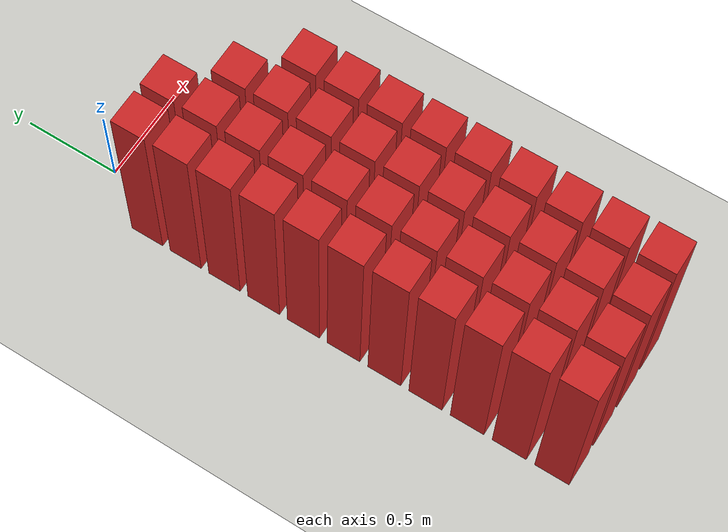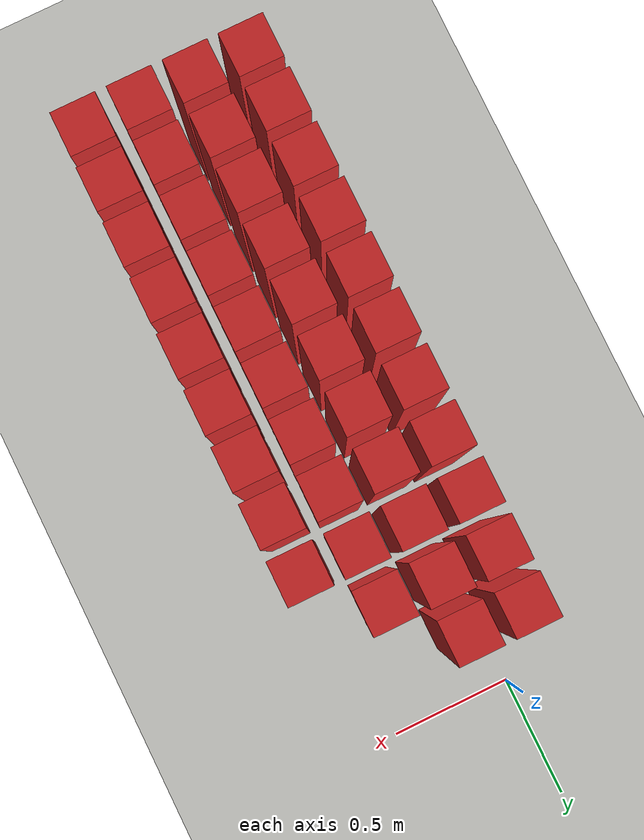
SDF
<sdf version="1.7">
 <world name="default">
  <model name="ground_plane">
   <static>1</static>
   <link name="link">
    <collision name="collision">
     <geometry><plane><normal>0 0 1</normal><size>100 100</size></plane></geometry>
     <surface>
      <contact><collide_bitmask>65535</collide_bitmask></contact>
      <friction><ode><mu>100</mu><mu2>50</mu2></ode></friction>
     </surface>
    </collision>
    <visual name="visual">
     <cast_shadows>0</cast_shadows>
     <geometry><plane><normal>0 0 1</normal><size>100 100</size></plane></geometry>
     <material>
      <script><uri>file://media/materials/scripts/gazebo.material</uri><name>Gazebo/CeilingTiled</name></script>
     </material>
    </visual>
   </link>
  </model>
  <model name="wall11">
   <link name="link">
    <pose>0 0 0.5 0 -0 0</pose>
    <inertial>
     <mass>0.5167</mass>
     <inertia>
      <ixx>0.000861167</ixx>
      <ixy>0</ixy>
      <ixz>0</ixz>
      <iyy>0.000861167</iyy>
      <iyz>0</iyz>
      <izz>0.000861167</izz>
     </inertia>
    </inertial>
    <collision name="collision">
     <geometry><box><size>0.21 0.21 1</size></box></geometry>
     <surface>
      <contact>
       <poissons_ratio>0.347</poissons_ratio>
       <elastic_modulus>8.8e+09</elastic_modulus>
       <ode><kp>100000</kp><kd>100</kd><max_vel>100</max_vel><min_depth>0.001</min_depth></ode>
      </contact>
      <friction>
       <torsional>
        <coefficient>1</coefficient>
        <use_patch_radius>0</use_patch_radius>
        <surface_radius>0.01</surface_radius>
       </torsional>
      </friction>
     </surface>
    </collision>
    <visual name="visual">
     <geometry><box><size>0.175 0.175 1</size></box></geometry>
     <material>
      <script><uri>file://media/materials/scripts/gazebo.material</uri><name>Gazebo/Red</name></script>
     </material>
    </visual>
   </link>
   <pose>-0.108696 -2.5 0 0 -0 0</pose>
  </model>
  <model name="wall12">
   <link name="link">
    <pose>0 0 0.5 0 -0 0</pose>
    <inertial>
     <mass>0.5167</mass>
     <inertia>
      <ixx>0.000861167</ixx>
      <ixy>0</ixy>
      <ixz>0</ixz>
      <iyy>0.000861167</iyy>
      <iyz>0</iyz>
      <izz>0.000861167</izz>
     </inertia>
    </inertial>
    <collision name="collision">
     <geometry><box><size>0.21 0.21 1</size></box></geometry>
     <surface>
      <contact>
       <poissons_ratio>0.347</poissons_ratio>
       <elastic_modulus>8.8e+09</elastic_modulus>
       <ode><kp>100000</kp><kd>100</kd><max_vel>100</max_vel><min_depth>0.001</min_depth></ode>
      </contact>
      <friction>
       <torsional>
        <coefficient>1</coefficient>
        <use_patch_radius>0</use_patch_radius>
        <surface_radius>0.01</surface_radius>
       </torsional>
      </friction>
     </surface>
    </collision>
    <visual name="visual">
     <geometry><box><size>0.175 0.175 1</size></box></geometry>
     <material>
      <script><uri>file://media/materials/scripts/gazebo.material</uri><name>Gazebo/Red</name></script>
     </material>
    </visual>
   </link>
   <pose>0.108696 -2.5 0 0 -0 0</pose>
  </model>
  <model name="wall13">
   <link name="link">
    <pose>0 0 0.5 0 -0 0</pose>
    <inertial>
     <mass>0.5167</mass>
     <inertia>
      <ixx>0.000861167</ixx>
      <ixy>0</ixy>
      <ixz>0</ixz>
      <iyy>0.000861167</iyy>
      <iyz>0</iyz>
      <izz>0.000861167</izz>
     </inertia>
    </inertial>
    <collision name="collision">
     <geometry><box><size>0.21 0.21 1</size></box></geometry>
     <surface>
      <contact>
       <poissons_ratio>0.347</poissons_ratio>
       <elastic_modulus>8.8e+09</elastic_modulus>
       <ode><kp>100000</kp><kd>100</kd><max_vel>100</max_vel><min_depth>0.001</min_depth></ode>
      </contact>
      <friction>
       <torsional>
        <coefficient>1</coefficient>
        <use_patch_radius>0</use_patch_radius>
        <surface_radius>0.01</surface_radius>
       </torsional>
      </friction>
     </surface>
    </collision>
    <visual name="visual">
     <geometry><box><size>0.175 0.175 1</size></box></geometry>
     <material>
      <script><uri>file://media/materials/scripts/gazebo.material</uri><name>Gazebo/Red</name></script>
     </material>
    </visual>
   </link>
   <pose>0.326087 -2.5 0 0 -0 0</pose>
  </model>
  <model name="wall14">
   <link name="link">
    <pose>0 0 0.5 0 -0 0</pose>
    <inertial>
     <mass>0.5167</mass>
     <inertia>
      <ixx>0.000861167</ixx>
      <ixy>0</ixy>
      <ixz>0</ixz>
      <iyy>0.000861167</iyy>
      <iyz>0</iyz>
      <izz>0.000861167</izz>
     </inertia>
    </inertial>
    <collision name="collision">
     <geometry><box><size>0.21 0.21 1</size></box></geometry>
     <surface>
      <contact>
       <poissons_ratio>0.347</poissons_ratio>
       <elastic_modulus>8.8e+09</elastic_modulus>
       <ode><kp>100000</kp><kd>100</kd><max_vel>100</max_vel><min_depth>0.001</min_depth></ode>
      </contact>
      <friction>
       <torsional>
        <coefficient>1</coefficient>
        <use_patch_radius>0</use_patch_radius>
        <surface_radius>0.01</surface_radius>
       </torsional>
      </friction>
     </surface>
    </collision>
    <visual name="visual">
     <geometry><box><size>0.175 0.175 1</size></box></geometry>
     <material>
      <script><uri>file://media/materials/scripts/gazebo.material</uri><name>Gazebo/Red</name></script>
     </material>
    </visual>
   </link>
   <pose>0.543478 -2.5 0 0 -0 0</pose>
  </model>
  <model name="wall34">
   <link name="link">
    <pose>0 0 0.5 0 -0 0</pose>
    <inertial>
     <mass>0.5167</mass>
     <inertia>
      <ixx>0.000861167</ixx>
      <ixy>0</ixy>
      <ixz>0</ixz>
      <iyy>0.000861167</iyy>
      <iyz>0</iyz>
      <izz>0.000861167</izz>
     </inertia>
    </inertial>
    <collision name="collision">
     <geometry><box><size>0.21 0.21 1</size></box></geometry>
     <surface>
      <contact>
       <poissons_ratio>0.347</poissons_ratio>
       <elastic_modulus>8.8e+09</elastic_modulus>
       <ode><kp>100000</kp><kd>100</kd><max_vel>100</max_vel><min_depth>0.001</min_depth></ode>
      </contact>
      <friction>
       <torsional>
        <coefficient>1</coefficient>
        <use_patch_radius>0</use_patch_radius>
        <surface_radius>0.01</surface_radius>
       </torsional>
      </friction>
     </surface>
    </collision>
    <visual name="visual">
     <geometry><box><size>0.175 0.175 1</size></box></geometry>
     <material>
      <script><uri>file://media/materials/scripts/gazebo.material</uri><name>Gazebo/Red</name></script>
     </material>
    </visual>
   </link>
   <pose>-0.108696 -2.28261 0 0 -0 0</pose>
  </model>
  <model name="wall35">
   <link name="link">
    <pose>0 0 0.5 0 -0 0</pose>
    <inertial>
     <mass>0.5167</mass>
     <inertia>
      <ixx>0.000861167</ixx>
      <ixy>0</ixy>
      <ixz>0</ixz>
      <iyy>0.000861167</iyy>
      <iyz>0</iyz>
      <izz>0.000861167</izz>
     </inertia>
    </inertial>
    <collision name="collision">
     <geometry><box><size>0.21 0.21 1</size></box></geometry>
     <surface>
      <contact>
       <poissons_ratio>0.347</poissons_ratio>
       <elastic_modulus>8.8e+09</elastic_modulus>
       <ode><kp>100000</kp><kd>100</kd><max_vel>100</max_vel><min_depth>0.001</min_depth></ode>
      </contact>
      <friction>
       <torsional>
        <coefficient>1</coefficient>
        <use_patch_radius>0</use_patch_radius>
        <surface_radius>0.01</surface_radius>
       </torsional>
      </friction>
     </surface>
    </collision>
    <visual name="visual">
     <geometry><box><size>0.175 0.175 1</size></box></geometry>
     <material>
      <script><uri>file://media/materials/scripts/gazebo.material</uri><name>Gazebo/Red</name></script>
     </material>
    </visual>
   </link>
   <pose>0.108696 -2.28261 0 0 -0 0</pose>
  </model>
  <model name="wall36">
   <link name="link">
    <pose>0 0 0.5 0 -0 0</pose>
    <inertial>
     <mass>0.5167</mass>
     <inertia>
      <ixx>0.000861167</ixx>
      <ixy>0</ixy>
      <ixz>0</ixz>
      <iyy>0.000861167</iyy>
      <iyz>0</iyz>
      <izz>0.000861167</izz>
     </inertia>
    </inertial>
    <collision name="collision">
     <geometry><box><size>0.21 0.21 1</size></box></geometry>
     <surface>
      <contact>
       <poissons_ratio>0.347</poissons_ratio>
       <elastic_modulus>8.8e+09</elastic_modulus>
       <ode><kp>100000</kp><kd>100</kd><max_vel>100</max_vel><min_depth>0.001</min_depth></ode>
      </contact>
      <friction>
       <torsional>
        <coefficient>1</coefficient>
        <use_patch_radius>0</use_patch_radius>
        <surface_radius>0.01</surface_radius>
       </torsional>
      </friction>
     </surface>
    </collision>
    <visual name="visual">
     <geometry><box><size>0.175 0.175 1</size></box></geometry>
     <material>
      <script><uri>file://media/materials/scripts/gazebo.material</uri><name>Gazebo/Red</name></script>
     </material>
    </visual>
   </link>
   <pose>0.326087 -2.28261 0 0 -0 0</pose>
  </model>
  <model name="wall37">
   <link name="link">
    <pose>0 0 0.5 0 -0 0</pose>
    <inertial>
     <mass>0.5167</mass>
     <inertia>
      <ixx>0.000861167</ixx>
      <ixy>0</ixy>
      <ixz>0</ixz>
      <iyy>0.000861167</iyy>
      <iyz>0</iyz>
      <izz>0.000861167</izz>
     </inertia>
    </inertial>
    <collision name="collision">
     <geometry><box><size>0.21 0.21 1</size></box></geometry>
     <surface>
      <contact>
       <poissons_ratio>0.347</poissons_ratio>
       <elastic_modulus>8.8e+09</elastic_modulus>
       <ode><kp>100000</kp><kd>100</kd><max_vel>100</max_vel><min_depth>0.001</min_depth></ode>
      </contact>
      <friction>
       <torsional>
        <coefficient>1</coefficient>
        <use_patch_radius>0</use_patch_radius>
        <surface_radius>0.01</surface_radius>
       </torsional>
      </friction>
     </surface>
    </collision>
    <visual name="visual">
     <geometry><box><size>0.175 0.175 1</size></box></geometry>
     <material>
      <script><uri>file://media/materials/scripts/gazebo.material</uri><name>Gazebo/Red</name></script>
     </material>
    </visual>
   </link>
   <pose>0.543478 -2.28261 0 0 -0 0</pose>
  </model>
  <model name="wall57">
   <link name="link">
    <pose>0 0 0.5 0 -0 0</pose>
    <inertial>
     <mass>0.5167</mass>
     <inertia>
      <ixx>0.000861167</ixx>
      <ixy>0</ixy>
      <ixz>0</ixz>
      <iyy>0.000861167</iyy>
      <iyz>0</iyz>
      <izz>0.000861167</izz>
     </inertia>
    </inertial>
    <collision name="collision">
     <geometry><box><size>0.21 0.21 1</size></box></geometry>
     <surface>
      <contact>
       <poissons_ratio>0.347</poissons_ratio>
       <elastic_modulus>8.8e+09</elastic_modulus>
       <ode><kp>100000</kp><kd>100</kd><max_vel>100</max_vel><min_depth>0.001</min_depth></ode>
      </contact>
      <friction>
       <torsional>
        <coefficient>1</coefficient>
        <use_patch_radius>0</use_patch_radius>
        <surface_radius>0.01</surface_radius>
       </torsional>
      </friction>
     </surface>
    </collision>
    <visual name="visual">
     <geometry><box><size>0.175 0.175 1</size></box></geometry>
     <material>
      <script><uri>file://media/materials/scripts/gazebo.material</uri><name>Gazebo/Red</name></script>
     </material>
    </visual>
   </link>
   <pose>-0.108696 -2.06522 0 0 -0 0</pose>
  </model>
  <model name="wall58">
   <link name="link">
    <pose>0 0 0.5 0 -0 0</pose>
    <inertial>
     <mass>0.5167</mass>
     <inertia>
      <ixx>0.000861167</ixx>
      <ixy>0</ixy>
      <ixz>0</ixz>
      <iyy>0.000861167</iyy>
      <iyz>0</iyz>
      <izz>0.000861167</izz>
     </inertia>
    </inertial>
    <collision name="collision">
     <geometry><box><size>0.21 0.21 1</size></box></geometry>
     <surface>
      <contact>
       <poissons_ratio>0.347</poissons_ratio>
       <elastic_modulus>8.8e+09</elastic_modulus>
       <ode><kp>100000</kp><kd>100</kd><max_vel>100</max_vel><min_depth>0.001</min_depth></ode>
      </contact>
      <friction>
       <torsional>
        <coefficient>1</coefficient>
        <use_patch_radius>0</use_patch_radius>
        <surface_radius>0.01</surface_radius>
       </torsional>
      </friction>
     </surface>
    </collision>
    <visual name="visual">
     <geometry><box><size>0.175 0.175 1</size></box></geometry>
     <material>
      <script><uri>file://media/materials/scripts/gazebo.material</uri><name>Gazebo/Red</name></script>
     </material>
    </visual>
   </link>
   <pose>0.108696 -2.06522 0 0 -0 0</pose>
  </model>
  <model name="wall59">
   <link name="link">
    <pose>0 0 0.5 0 -0 0</pose>
    <inertial>
     <mass>0.5167</mass>
     <inertia>
      <ixx>0.000861167</ixx>
      <ixy>0</ixy>
      <ixz>0</ixz>
      <iyy>0.000861167</iyy>
      <iyz>0</iyz>
      <izz>0.000861167</izz>
     </inertia>
    </inertial>
    <collision name="collision">
     <geometry><box><size>0.21 0.21 1</size></box></geometry>
     <surface>
      <contact>
       <poissons_ratio>0.347</poissons_ratio>
       <elastic_modulus>8.8e+09</elastic_modulus>
       <ode><kp>100000</kp><kd>100</kd><max_vel>100</max_vel><min_depth>0.001</min_depth></ode>
      </contact>
      <friction>
       <torsional>
        <coefficient>1</coefficient>
        <use_patch_radius>0</use_patch_radius>
        <surface_radius>0.01</surface_radius>
       </torsional>
      </friction>
     </surface>
    </collision>
    <visual name="visual">
     <geometry><box><size>0.175 0.175 1</size></box></geometry>
     <material>
      <script><uri>file://media/materials/scripts/gazebo.material</uri><name>Gazebo/Red</name></script>
     </material>
    </visual>
   </link>
   <pose>0.326087 -2.06522 0 0 -0 0</pose>
  </model>
  <model name="wall60">
   <link name="link">
    <pose>0 0 0.5 0 -0 0</pose>
    <inertial>
     <mass>0.5167</mass>
     <inertia>
      <ixx>0.000861167</ixx>
      <ixy>0</ixy>
      <ixz>0</ixz>
      <iyy>0.000861167</iyy>
      <iyz>0</iyz>
      <izz>0.000861167</izz>
     </inertia>
    </inertial>
    <collision name="collision">
     <geometry><box><size>0.21 0.21 1</size></box></geometry>
     <surface>
      <contact>
       <poissons_ratio>0.347</poissons_ratio>
       <elastic_modulus>8.8e+09</elastic_modulus>
       <ode><kp>100000</kp><kd>100</kd><max_vel>100</max_vel><min_depth>0.001</min_depth></ode>
      </contact>
      <friction>
       <torsional>
        <coefficient>1</coefficient>
        <use_patch_radius>0</use_patch_radius>
        <surface_radius>0.01</surface_radius>
       </torsional>
      </friction>
     </surface>
    </collision>
    <visual name="visual">
     <geometry><box><size>0.175 0.175 1</size></box></geometry>
     <material>
      <script><uri>file://media/materials/scripts/gazebo.material</uri><name>Gazebo/Red</name></script>
     </material>
    </visual>
   </link>
   <pose>0.543478 -2.06522 0 0 -0 0</pose>
  </model>
  <model name="wall80">
   <link name="link">
    <pose>0 0 0.5 0 -0 0</pose>
    <inertial>
     <mass>0.5167</mass>
     <inertia>
      <ixx>0.000861167</ixx>
      <ixy>0</ixy>
      <ixz>0</ixz>
      <iyy>0.000861167</iyy>
      <iyz>0</iyz>
      <izz>0.000861167</izz>
     </inertia>
    </inertial>
    <collision name="collision">
     <geometry><box><size>0.21 0.21 1</size></box></geometry>
     <surface>
      <contact>
       <poissons_ratio>0.347</poissons_ratio>
       <elastic_modulus>8.8e+09</elastic_modulus>
       <ode><kp>100000</kp><kd>100</kd><max_vel>100</max_vel><min_depth>0.001</min_depth></ode>
      </contact>
      <friction>
       <torsional>
        <coefficient>1</coefficient>
        <use_patch_radius>0</use_patch_radius>
        <surface_radius>0.01</surface_radius>
       </torsional>
      </friction>
     </surface>
    </collision>
    <visual name="visual">
     <geometry><box><size>0.175 0.175 1</size></box></geometry>
     <material>
      <script><uri>file://media/materials/scripts/gazebo.material</uri><name>Gazebo/Red</name></script>
     </material>
    </visual>
   </link>
   <pose>-0.108696 -1.84783 0 0 -0 0</pose>
  </model>
  <model name="wall81">
   <link name="link">
    <pose>0 0 0.5 0 -0 0</pose>
    <inertial>
     <mass>0.5167</mass>
     <inertia>
      <ixx>0.000861167</ixx>
      <ixy>0</ixy>
      <ixz>0</ixz>
      <iyy>0.000861167</iyy>
      <iyz>0</iyz>
      <izz>0.000861167</izz>
     </inertia>
    </inertial>
    <collision name="collision">
     <geometry><box><size>0.21 0.21 1</size></box></geometry>
     <surface>
      <contact>
       <poissons_ratio>0.347</poissons_ratio>
       <elastic_modulus>8.8e+09</elastic_modulus>
       <ode><kp>100000</kp><kd>100</kd><max_vel>100</max_vel><min_depth>0.001</min_depth></ode>
      </contact>
      <friction>
       <torsional>
        <coefficient>1</coefficient>
        <use_patch_radius>0</use_patch_radius>
        <surface_radius>0.01</surface_radius>
       </torsional>
      </friction>
     </surface>
    </collision>
    <visual name="visual">
     <geometry><box><size>0.175 0.175 1</size></box></geometry>
     <material>
      <script><uri>file://media/materials/scripts/gazebo.material</uri><name>Gazebo/Red</name></script>
     </material>
    </visual>
   </link>
   <pose>0.108696 -1.84783 0 0 -0 0</pose>
  </model>
  <model name="wall82">
   <link name="link">
    <pose>0 0 0.5 0 -0 0</pose>
    <inertial>
     <mass>0.5167</mass>
     <inertia>
      <ixx>0.000861167</ixx>
      <ixy>0</ixy>
      <ixz>0</ixz>
      <iyy>0.000861167</iyy>
      <iyz>0</iyz>
      <izz>0.000861167</izz>
     </inertia>
    </inertial>
    <collision name="collision">
     <geometry><box><size>0.21 0.21 1</size></box></geometry>
     <surface>
      <contact>
       <poissons_ratio>0.347</poissons_ratio>
       <elastic_modulus>8.8e+09</elastic_modulus>
       <ode><kp>100000</kp><kd>100</kd><max_vel>100</max_vel><min_depth>0.001</min_depth></ode>
      </contact>
      <friction>
       <torsional>
        <coefficient>1</coefficient>
        <use_patch_radius>0</use_patch_radius>
        <surface_radius>0.01</surface_radius>
       </torsional>
      </friction>
     </surface>
    </collision>
    <visual name="visual">
     <geometry><box><size>0.175 0.175 1</size></box></geometry>
     <material>
      <script><uri>file://media/materials/scripts/gazebo.material</uri><name>Gazebo/Red</name></script>
     </material>
    </visual>
   </link>
   <pose>0.326087 -1.84783 0 0 -0 0</pose>
  </model>
  <model name="wall83">
   <link name="link">
    <pose>0 0 0.5 0 -0 0</pose>
    <inertial>
     <mass>0.5167</mass>
     <inertia>
      <ixx>0.000861167</ixx>
      <ixy>0</ixy>
      <ixz>0</ixz>
      <iyy>0.000861167</iyy>
      <iyz>0</iyz>
      <izz>0.000861167</izz>
     </inertia>
    </inertial>
    <collision name="collision">
     <geometry><box><size>0.21 0.21 1</size></box></geometry>
     <surface>
      <contact>
       <poissons_ratio>0.347</poissons_ratio>
       <elastic_modulus>8.8e+09</elastic_modulus>
       <ode><kp>100000</kp><kd>100</kd><max_vel>100</max_vel><min_depth>0.001</min_depth></ode>
      </contact>
      <friction>
       <torsional>
        <coefficient>1</coefficient>
        <use_patch_radius>0</use_patch_radius>
        <surface_radius>0.01</surface_radius>
       </torsional>
      </friction>
     </surface>
    </collision>
    <visual name="visual">
     <geometry><box><size>0.175 0.175 1</size></box></geometry>
     <material>
      <script><uri>file://media/materials/scripts/gazebo.material</uri><name>Gazebo/Red</name></script>
     </material>
    </visual>
   </link>
   <pose>0.543478 -1.84783 0 0 -0 0</pose>
  </model>
  <model name="wall103">
   <link name="link">
    <pose>0 0 0.5 0 -0 0</pose>
    <inertial>
     <mass>0.5167</mass>
     <inertia>
      <ixx>0.000861167</ixx>
      <ixy>0</ixy>
      <ixz>0</ixz>
      <iyy>0.000861167</iyy>
      <iyz>0</iyz>
      <izz>0.000861167</izz>
     </inertia>
    </inertial>
    <collision name="collision">
     <geometry><box><size>0.21 0.21 1</size></box></geometry>
     <surface>
      <contact>
       <poissons_ratio>0.347</poissons_ratio>
       <elastic_modulus>8.8e+09</elastic_modulus>
       <ode><kp>100000</kp><kd>100</kd><max_vel>100</max_vel><min_depth>0.001</min_depth></ode>
      </contact>
      <friction>
       <torsional>
        <coefficient>1</coefficient>
        <use_patch_radius>0</use_patch_radius>
        <surface_radius>0.01</surface_radius>
       </torsional>
      </friction>
     </surface>
    </collision>
    <visual name="visual">
     <geometry><box><size>0.175 0.175 1</size></box></geometry>
     <material>
      <script><uri>file://media/materials/scripts/gazebo.material</uri><name>Gazebo/Red</name></script>
     </material>
    </visual>
   </link>
   <pose>-0.108696 -1.63043 0 0 -0 0</pose>
  </model>
  <model name="wall104">
   <link name="link">
    <pose>0 0 0.5 0 -0 0</pose>
    <inertial>
     <mass>0.5167</mass>
     <inertia>
      <ixx>0.000861167</ixx>
      <ixy>0</ixy>
      <ixz>0</ixz>
      <iyy>0.000861167</iyy>
      <iyz>0</iyz>
      <izz>0.000861167</izz>
     </inertia>
    </inertial>
    <collision name="collision">
     <geometry><box><size>0.21 0.21 1</size></box></geometry>
     <surface>
      <contact>
       <poissons_ratio>0.347</poissons_ratio>
       <elastic_modulus>8.8e+09</elastic_modulus>
       <ode><kp>100000</kp><kd>100</kd><max_vel>100</max_vel><min_depth>0.001</min_depth></ode>
      </contact>
      <friction>
       <torsional>
        <coefficient>1</coefficient>
        <use_patch_radius>0</use_patch_radius>
        <surface_radius>0.01</surface_radius>
       </torsional>
      </friction>
     </surface>
    </collision>
    <visual name="visual">
     <geometry><box><size>0.175 0.175 1</size></box></geometry>
     <material>
      <script><uri>file://media/materials/scripts/gazebo.material</uri><name>Gazebo/Red</name></script>
     </material>
    </visual>
   </link>
   <pose>0.108696 -1.63043 0 0 -0 0</pose>
  </model>
  <model name="wall105">
   <link name="link">
    <pose>0 0 0.5 0 -0 0</pose>
    <inertial>
     <mass>0.5167</mass>
     <inertia>
      <ixx>0.000861167</ixx>
      <ixy>0</ixy>
      <ixz>0</ixz>
      <iyy>0.000861167</iyy>
      <iyz>0</iyz>
      <izz>0.000861167</izz>
     </inertia>
    </inertial>
    <collision name="collision">
     <geometry><box><size>0.21 0.21 1</size></box></geometry>
     <surface>
      <contact>
       <poissons_ratio>0.347</poissons_ratio>
       <elastic_modulus>8.8e+09</elastic_modulus>
       <ode><kp>100000</kp><kd>100</kd><max_vel>100</max_vel><min_depth>0.001</min_depth></ode>
      </contact>
      <friction>
       <torsional>
        <coefficient>1</coefficient>
        <use_patch_radius>0</use_patch_radius>
        <surface_radius>0.01</surface_radius>
       </torsional>
      </friction>
     </surface>
    </collision>
    <visual name="visual">
     <geometry><box><size>0.175 0.175 1</size></box></geometry>
     <material>
      <script><uri>file://media/materials/scripts/gazebo.material</uri><name>Gazebo/Red</name></script>
     </material>
    </visual>
   </link>
   <pose>0.326087 -1.63043 0 0 -0 0</pose>
  </model>
  <model name="wall106">
   <link name="link">
    <pose>0 0 0.5 0 -0 0</pose>
    <inertial>
     <mass>0.5167</mass>
     <inertia>
      <ixx>0.000861167</ixx>
      <ixy>0</ixy>
      <ixz>0</ixz>
      <iyy>0.000861167</iyy>
      <iyz>0</iyz>
      <izz>0.000861167</izz>
     </inertia>
    </inertial>
    <collision name="collision">
     <geometry><box><size>0.21 0.21 1</size></box></geometry>
     <surface>
      <contact>
       <poissons_ratio>0.347</poissons_ratio>
       <elastic_modulus>8.8e+09</elastic_modulus>
       <ode><kp>100000</kp><kd>100</kd><max_vel>100</max_vel><min_depth>0.001</min_depth></ode>
      </contact>
      <friction>
       <torsional>
        <coefficient>1</coefficient>
        <use_patch_radius>0</use_patch_radius>
        <surface_radius>0.01</surface_radius>
       </torsional>
      </friction>
     </surface>
    </collision>
    <visual name="visual">
     <geometry><box><size>0.175 0.175 1</size></box></geometry>
     <material>
      <script><uri>file://media/materials/scripts/gazebo.material</uri><name>Gazebo/Red</name></script>
     </material>
    </visual>
   </link>
   <pose>0.543478 -1.63043 0 0 -0 0</pose>
  </model>
  <model name="wall126">
   <link name="link">
    <pose>0 0 0.5 0 -0 0</pose>
    <inertial>
     <mass>0.5167</mass>
     <inertia>
      <ixx>0.000861167</ixx>
      <ixy>0</ixy>
      <ixz>0</ixz>
      <iyy>0.000861167</iyy>
      <iyz>0</iyz>
      <izz>0.000861167</izz>
     </inertia>
    </inertial>
    <collision name="collision">
     <geometry><box><size>0.21 0.21 1</size></box></geometry>
     <surface>
      <contact>
       <poissons_ratio>0.347</poissons_ratio>
       <elastic_modulus>8.8e+09</elastic_modulus>
       <ode><kp>100000</kp><kd>100</kd><max_vel>100</max_vel><min_depth>0.001</min_depth></ode>
      </contact>
      <friction>
       <torsional>
        <coefficient>1</coefficient>
        <use_patch_radius>0</use_patch_radius>
        <surface_radius>0.01</surface_radius>
       </torsional>
      </friction>
     </surface>
    </collision>
    <visual name="visual">
     <geometry><box><size>0.175 0.175 1</size></box></geometry>
     <material>
      <script><uri>file://media/materials/scripts/gazebo.material</uri><name>Gazebo/Red</name></script>
     </material>
    </visual>
   </link>
   <pose>-0.108696 -1.41304 0 0 -0 0</pose>
  </model>
  <model name="wall127">
   <link name="link">
    <pose>0 0 0.5 0 -0 0</pose>
    <inertial>
     <mass>0.5167</mass>
     <inertia>
      <ixx>0.000861167</ixx>
      <ixy>0</ixy>
      <ixz>0</ixz>
      <iyy>0.000861167</iyy>
      <iyz>0</iyz>
      <izz>0.000861167</izz>
     </inertia>
    </inertial>
    <collision name="collision">
     <geometry><box><size>0.21 0.21 1</size></box></geometry>
     <surface>
      <contact>
       <poissons_ratio>0.347</poissons_ratio>
       <elastic_modulus>8.8e+09</elastic_modulus>
       <ode><kp>100000</kp><kd>100</kd><max_vel>100</max_vel><min_depth>0.001</min_depth></ode>
      </contact>
      <friction>
       <torsional>
        <coefficient>1</coefficient>
        <use_patch_radius>0</use_patch_radius>
        <surface_radius>0.01</surface_radius>
       </torsional>
      </friction>
     </surface>
    </collision>
    <visual name="visual">
     <geometry><box><size>0.175 0.175 1</size></box></geometry>
     <material>
      <script><uri>file://media/materials/scripts/gazebo.material</uri><name>Gazebo/Red</name></script>
     </material>
    </visual>
   </link>
   <pose>0.108696 -1.41304 0 0 -0 0</pose>
  </model>
  <model name="wall128">
   <link name="link">
    <pose>0 0 0.5 0 -0 0</pose>
    <inertial>
     <mass>0.5167</mass>
     <inertia>
      <ixx>0.000861167</ixx>
      <ixy>0</ixy>
      <ixz>0</ixz>
      <iyy>0.000861167</iyy>
      <iyz>0</iyz>
      <izz>0.000861167</izz>
     </inertia>
    </inertial>
    <collision name="collision">
     <geometry><box><size>0.21 0.21 1</size></box></geometry>
     <surface>
      <contact>
       <poissons_ratio>0.347</poissons_ratio>
       <elastic_modulus>8.8e+09</elastic_modulus>
       <ode><kp>100000</kp><kd>100</kd><max_vel>100</max_vel><min_depth>0.001</min_depth></ode>
      </contact>
      <friction>
       <torsional>
        <coefficient>1</coefficient>
        <use_patch_radius>0</use_patch_radius>
        <surface_radius>0.01</surface_radius>
       </torsional>
      </friction>
     </surface>
    </collision>
    <visual name="visual">
     <geometry><box><size>0.175 0.175 1</size></box></geometry>
     <material>
      <script><uri>file://media/materials/scripts/gazebo.material</uri><name>Gazebo/Red</name></script>
     </material>
    </visual>
   </link>
   <pose>0.326087 -1.41304 0 0 -0 0</pose>
  </model>
  <model name="wall129">
   <link name="link">
    <pose>0 0 0.5 0 -0 0</pose>
    <inertial>
     <mass>0.5167</mass>
     <inertia>
      <ixx>0.000861167</ixx>
      <ixy>0</ixy>
      <ixz>0</ixz>
      <iyy>0.000861167</iyy>
      <iyz>0</iyz>
      <izz>0.000861167</izz>
     </inertia>
    </inertial>
    <collision name="collision">
     <geometry><box><size>0.21 0.21 1</size></box></geometry>
     <surface>
      <contact>
       <poissons_ratio>0.347</poissons_ratio>
       <elastic_modulus>8.8e+09</elastic_modulus>
       <ode><kp>100000</kp><kd>100</kd><max_vel>100</max_vel><min_depth>0.001</min_depth></ode>
      </contact>
      <friction>
       <torsional>
        <coefficient>1</coefficient>
        <use_patch_radius>0</use_patch_radius>
        <surface_radius>0.01</surface_radius>
       </torsional>
      </friction>
     </surface>
    </collision>
    <visual name="visual">
     <geometry><box><size>0.175 0.175 1</size></box></geometry>
     <material>
      <script><uri>file://media/materials/scripts/gazebo.material</uri><name>Gazebo/Red</name></script>
     </material>
    </visual>
   </link>
   <pose>0.543478 -1.41304 0 0 -0 0</pose>
  </model>
  <model name="wall149">
   <link name="link">
    <pose>0 0 0.5 0 -0 0</pose>
    <inertial>
     <mass>0.5167</mass>
     <inertia>
      <ixx>0.000861167</ixx>
      <ixy>0</ixy>
      <ixz>0</ixz>
      <iyy>0.000861167</iyy>
      <iyz>0</iyz>
      <izz>0.000861167</izz>
     </inertia>
    </inertial>
    <collision name="collision">
     <geometry><box><size>0.21 0.21 1</size></box></geometry>
     <surface>
      <contact>
       <poissons_ratio>0.347</poissons_ratio>
       <elastic_modulus>8.8e+09</elastic_modulus>
       <ode><kp>100000</kp><kd>100</kd><max_vel>100</max_vel><min_depth>0.001</min_depth></ode>
      </contact>
      <friction>
       <torsional>
        <coefficient>1</coefficient>
        <use_patch_radius>0</use_patch_radius>
        <surface_radius>0.01</surface_radius>
       </torsional>
      </friction>
     </surface>
    </collision>
    <visual name="visual">
     <geometry><box><size>0.175 0.175 1</size></box></geometry>
     <material>
      <script><uri>file://media/materials/scripts/gazebo.material</uri><name>Gazebo/Red</name></script>
     </material>
    </visual>
   </link>
   <pose>-0.108696 -1.19565 0 0 -0 0</pose>
  </model>
  <model name="wall150">
   <link name="link">
    <pose>0 0 0.5 0 -0 0</pose>
    <inertial>
     <mass>0.5167</mass>
     <inertia>
      <ixx>0.000861167</ixx>
      <ixy>0</ixy>
      <ixz>0</ixz>
      <iyy>0.000861167</iyy>
      <iyz>0</iyz>
      <izz>0.000861167</izz>
     </inertia>
    </inertial>
    <collision name="collision">
     <geometry><box><size>0.21 0.21 1</size></box></geometry>
     <surface>
      <contact>
       <poissons_ratio>0.347</poissons_ratio>
       <elastic_modulus>8.8e+09</elastic_modulus>
       <ode><kp>100000</kp><kd>100</kd><max_vel>100</max_vel><min_depth>0.001</min_depth></ode>
      </contact>
      <friction>
       <torsional>
        <coefficient>1</coefficient>
        <use_patch_radius>0</use_patch_radius>
        <surface_radius>0.01</surface_radius>
       </torsional>
      </friction>
     </surface>
    </collision>
    <visual name="visual">
     <geometry><box><size>0.175 0.175 1</size></box></geometry>
     <material>
      <script><uri>file://media/materials/scripts/gazebo.material</uri><name>Gazebo/Red</name></script>
     </material>
    </visual>
   </link>
   <pose>0.108696 -1.19565 0 0 -0 0</pose>
  </model>
  <model name="wall151">
   <link name="link">
    <pose>0 0 0.5 0 -0 0</pose>
    <inertial>
     <mass>0.5167</mass>
     <inertia>
      <ixx>0.000861167</ixx>
      <ixy>0</ixy>
      <ixz>0</ixz>
      <iyy>0.000861167</iyy>
      <iyz>0</iyz>
      <izz>0.000861167</izz>
     </inertia>
    </inertial>
    <collision name="collision">
     <geometry><box><size>0.21 0.21 1</size></box></geometry>
     <surface>
      <contact>
       <poissons_ratio>0.347</poissons_ratio>
       <elastic_modulus>8.8e+09</elastic_modulus>
       <ode><kp>100000</kp><kd>100</kd><max_vel>100</max_vel><min_depth>0.001</min_depth></ode>
      </contact>
      <friction>
       <torsional>
        <coefficient>1</coefficient>
        <use_patch_radius>0</use_patch_radius>
        <surface_radius>0.01</surface_radius>
       </torsional>
      </friction>
     </surface>
    </collision>
    <visual name="visual">
     <geometry><box><size>0.175 0.175 1</size></box></geometry>
     <material>
      <script><uri>file://media/materials/scripts/gazebo.material</uri><name>Gazebo/Red</name></script>
     </material>
    </visual>
   </link>
   <pose>0.326087 -1.19565 0 0 -0 0</pose>
  </model>
  <model name="wall152">
   <link name="link">
    <pose>0 0 0.5 0 -0 0</pose>
    <inertial>
     <mass>0.5167</mass>
     <inertia>
      <ixx>0.000861167</ixx>
      <ixy>0</ixy>
      <ixz>0</ixz>
      <iyy>0.000861167</iyy>
      <iyz>0</iyz>
      <izz>0.000861167</izz>
     </inertia>
    </inertial>
    <collision name="collision">
     <geometry><box><size>0.21 0.21 1</size></box></geometry>
     <surface>
      <contact>
       <poissons_ratio>0.347</poissons_ratio>
       <elastic_modulus>8.8e+09</elastic_modulus>
       <ode><kp>100000</kp><kd>100</kd><max_vel>100</max_vel><min_depth>0.001</min_depth></ode>
      </contact>
      <friction>
       <torsional>
        <coefficient>1</coefficient>
        <use_patch_radius>0</use_patch_radius>
        <surface_radius>0.01</surface_radius>
       </torsional>
      </friction>
     </surface>
    </collision>
    <visual name="visual">
     <geometry><box><size>0.175 0.175 1</size></box></geometry>
     <material>
      <script><uri>file://media/materials/scripts/gazebo.material</uri><name>Gazebo/Red</name></script>
     </material>
    </visual>
   </link>
   <pose>0.543478 -1.19565 0 0 -0 0</pose>
  </model>
  <model name="wall172">
   <link name="link">
    <pose>0 0 0.5 0 -0 0</pose>
    <inertial>
     <mass>0.5167</mass>
     <inertia>
      <ixx>0.000861167</ixx>
      <ixy>0</ixy>
      <ixz>0</ixz>
      <iyy>0.000861167</iyy>
      <iyz>0</iyz>
      <izz>0.000861167</izz>
     </inertia>
    </inertial>
    <collision name="collision">
     <geometry><box><size>0.21 0.21 1</size></box></geometry>
     <surface>
      <contact>
       <poissons_ratio>0.347</poissons_ratio>
       <elastic_modulus>8.8e+09</elastic_modulus>
       <ode><kp>100000</kp><kd>100</kd><max_vel>100</max_vel><min_depth>0.001</min_depth></ode>
      </contact>
      <friction>
       <torsional>
        <coefficient>1</coefficient>
        <use_patch_radius>0</use_patch_radius>
        <surface_radius>0.01</surface_radius>
       </torsional>
      </friction>
     </surface>
    </collision>
    <visual name="visual">
     <geometry><box><size>0.175 0.175 1</size></box></geometry>
     <material>
      <script><uri>file://media/materials/scripts/gazebo.material</uri><name>Gazebo/Red</name></script>
     </material>
    </visual>
   </link>
   <pose>-0.108696 -0.978261 0 0 -0 0</pose>
  </model>
  <model name="wall173">
   <link name="link">
    <pose>0 0 0.5 0 -0 0</pose>
    <inertial>
     <mass>0.5167</mass>
     <inertia>
      <ixx>0.000861167</ixx>
      <ixy>0</ixy>
      <ixz>0</ixz>
      <iyy>0.000861167</iyy>
      <iyz>0</iyz>
      <izz>0.000861167</izz>
     </inertia>
    </inertial>
    <collision name="collision">
     <geometry><box><size>0.21 0.21 1</size></box></geometry>
     <surface>
      <contact>
       <poissons_ratio>0.347</poissons_ratio>
       <elastic_modulus>8.8e+09</elastic_modulus>
       <ode><kp>100000</kp><kd>100</kd><max_vel>100</max_vel><min_depth>0.001</min_depth></ode>
      </contact>
      <friction>
       <torsional>
        <coefficient>1</coefficient>
        <use_patch_radius>0</use_patch_radius>
        <surface_radius>0.01</surface_radius>
       </torsional>
      </friction>
     </surface>
    </collision>
    <visual name="visual">
     <geometry><box><size>0.175 0.175 1</size></box></geometry>
     <material>
      <script><uri>file://media/materials/scripts/gazebo.material</uri><name>Gazebo/Red</name></script>
     </material>
    </visual>
   </link>
   <pose>0.108696 -0.978261 0 0 -0 0</pose>
  </model>
  <model name="wall174">
   <link name="link">
    <pose>0 0 0.5 0 -0 0</pose>
    <inertial>
     <mass>0.5167</mass>
     <inertia>
      <ixx>0.000861167</ixx>
      <ixy>0</ixy>
      <ixz>0</ixz>
      <iyy>0.000861167</iyy>
      <iyz>0</iyz>
      <izz>0.000861167</izz>
     </inertia>
    </inertial>
    <collision name="collision">
     <geometry><box><size>0.21 0.21 1</size></box></geometry>
     <surface>
      <contact>
       <poissons_ratio>0.347</poissons_ratio>
       <elastic_modulus>8.8e+09</elastic_modulus>
       <ode><kp>100000</kp><kd>100</kd><max_vel>100</max_vel><min_depth>0.001</min_depth></ode>
      </contact>
      <friction>
       <torsional>
        <coefficient>1</coefficient>
        <use_patch_radius>0</use_patch_radius>
        <surface_radius>0.01</surface_radius>
       </torsional>
      </friction>
     </surface>
    </collision>
    <visual name="visual">
     <geometry><box><size>0.175 0.175 1</size></box></geometry>
     <material>
      <script><uri>file://media/materials/scripts/gazebo.material</uri><name>Gazebo/Red</name></script>
     </material>
    </visual>
   </link>
   <pose>0.326087 -0.978261 0 0 -0 0</pose>
  </model>
  <model name="wall175">
   <link name="link">
    <pose>0 0 0.5 0 -0 0</pose>
    <inertial>
     <mass>0.5167</mass>
     <inertia>
      <ixx>0.000861167</ixx>
      <ixy>0</ixy>
      <ixz>0</ixz>
      <iyy>0.000861167</iyy>
      <iyz>0</iyz>
      <izz>0.000861167</izz>
     </inertia>
    </inertial>
    <collision name="collision">
     <geometry><box><size>0.21 0.21 1</size></box></geometry>
     <surface>
      <contact>
       <poissons_ratio>0.347</poissons_ratio>
       <elastic_modulus>8.8e+09</elastic_modulus>
       <ode><kp>100000</kp><kd>100</kd><max_vel>100</max_vel><min_depth>0.001</min_depth></ode>
      </contact>
      <friction>
       <torsional>
        <coefficient>1</coefficient>
        <use_patch_radius>0</use_patch_radius>
        <surface_radius>0.01</surface_radius>
       </torsional>
      </friction>
     </surface>
    </collision>
    <visual name="visual">
     <geometry><box><size>0.175 0.175 1</size></box></geometry>
     <material>
      <script><uri>file://media/materials/scripts/gazebo.material</uri><name>Gazebo/Red</name></script>
     </material>
    </visual>
   </link>
   <pose>0.543478 -0.978261 0 0 -0 0</pose>
  </model>
  <model name="wall195">
   <link name="link">
    <pose>0 0 0.5 0 -0 0</pose>
    <inertial>
     <mass>0.5167</mass>
     <inertia>
      <ixx>0.000861167</ixx>
      <ixy>0</ixy>
      <ixz>0</ixz>
      <iyy>0.000861167</iyy>
      <iyz>0</iyz>
      <izz>0.000861167</izz>
     </inertia>
    </inertial>
    <collision name="collision">
     <geometry><box><size>0.21 0.21 1</size></box></geometry>
     <surface>
      <contact>
       <poissons_ratio>0.347</poissons_ratio>
       <elastic_modulus>8.8e+09</elastic_modulus>
       <ode><kp>100000</kp><kd>100</kd><max_vel>100</max_vel><min_depth>0.001</min_depth></ode>
      </contact>
      <friction>
       <torsional>
        <coefficient>1</coefficient>
        <use_patch_radius>0</use_patch_radius>
        <surface_radius>0.01</surface_radius>
       </torsional>
      </friction>
     </surface>
    </collision>
    <visual name="visual">
     <geometry><box><size>0.175 0.175 1</size></box></geometry>
     <material>
      <script><uri>file://media/materials/scripts/gazebo.material</uri><name>Gazebo/Red</name></script>
     </material>
    </visual>
   </link>
   <pose>-0.108696 -0.76087 0 0 -0 0</pose>
  </model>
  <model name="wall196">
   <link name="link">
    <pose>0 0 0.5 0 -0 0</pose>
    <inertial>
     <mass>0.5167</mass>
     <inertia>
      <ixx>0.000861167</ixx>
      <ixy>0</ixy>
      <ixz>0</ixz>
      <iyy>0.000861167</iyy>
      <iyz>0</iyz>
      <izz>0.000861167</izz>
     </inertia>
    </inertial>
    <collision name="collision">
     <geometry><box><size>0.21 0.21 1</size></box></geometry>
     <surface>
      <contact>
       <poissons_ratio>0.347</poissons_ratio>
       <elastic_modulus>8.8e+09</elastic_modulus>
       <ode><kp>100000</kp><kd>100</kd><max_vel>100</max_vel><min_depth>0.001</min_depth></ode>
      </contact>
      <friction>
       <torsional>
        <coefficient>1</coefficient>
        <use_patch_radius>0</use_patch_radius>
        <surface_radius>0.01</surface_radius>
       </torsional>
      </friction>
     </surface>
    </collision>
    <visual name="visual">
     <geometry><box><size>0.175 0.175 1</size></box></geometry>
     <material>
      <script><uri>file://media/materials/scripts/gazebo.material</uri><name>Gazebo/Red</name></script>
     </material>
    </visual>
   </link>
   <pose>0.108696 -0.76087 0 0 -0 0</pose>
  </model>
  <model name="wall197">
   <link name="link">
    <pose>0 0 0.5 0 -0 0</pose>
    <inertial>
     <mass>0.5167</mass>
     <inertia>
      <ixx>0.000861167</ixx>
      <ixy>0</ixy>
      <ixz>0</ixz>
      <iyy>0.000861167</iyy>
      <iyz>0</iyz>
      <izz>0.000861167</izz>
     </inertia>
    </inertial>
    <collision name="collision">
     <geometry><box><size>0.21 0.21 1</size></box></geometry>
     <surface>
      <contact>
       <poissons_ratio>0.347</poissons_ratio>
       <elastic_modulus>8.8e+09</elastic_modulus>
       <ode><kp>100000</kp><kd>100</kd><max_vel>100</max_vel><min_depth>0.001</min_depth></ode>
      </contact>
      <friction>
       <torsional>
        <coefficient>1</coefficient>
        <use_patch_radius>0</use_patch_radius>
        <surface_radius>0.01</surface_radius>
       </torsional>
      </friction>
     </surface>
    </collision>
    <visual name="visual">
     <geometry><box><size>0.175 0.175 1</size></box></geometry>
     <material>
      <script><uri>file://media/materials/scripts/gazebo.material</uri><name>Gazebo/Red</name></script>
     </material>
    </visual>
   </link>
   <pose>0.326087 -0.76087 0 0 -0 0</pose>
  </model>
  <model name="wall198">
   <link name="link">
    <pose>0 0 0.5 0 -0 0</pose>
    <inertial>
     <mass>0.5167</mass>
     <inertia>
      <ixx>0.000861167</ixx>
      <ixy>0</ixy>
      <ixz>0</ixz>
      <iyy>0.000861167</iyy>
      <iyz>0</iyz>
      <izz>0.000861167</izz>
     </inertia>
    </inertial>
    <collision name="collision">
     <geometry><box><size>0.21 0.21 1</size></box></geometry>
     <surface>
      <contact>
       <poissons_ratio>0.347</poissons_ratio>
       <elastic_modulus>8.8e+09</elastic_modulus>
       <ode><kp>100000</kp><kd>100</kd><max_vel>100</max_vel><min_depth>0.001</min_depth></ode>
      </contact>
      <friction>
       <torsional>
        <coefficient>1</coefficient>
        <use_patch_radius>0</use_patch_radius>
        <surface_radius>0.01</surface_radius>
       </torsional>
      </friction>
     </surface>
    </collision>
    <visual name="visual">
     <geometry><box><size>0.175 0.175 1</size></box></geometry>
     <material>
      <script><uri>file://media/materials/scripts/gazebo.material</uri><name>Gazebo/Red</name></script>
     </material>
    </visual>
   </link>
   <pose>0.543478 -0.76087 0 0 -0 0</pose>
  </model>
  <model name="wall218">
   <link name="link">
    <pose>0 0 0.5 0 -0 0</pose>
    <inertial>
     <mass>0.5167</mass>
     <inertia>
      <ixx>0.000861167</ixx>
      <ixy>0</ixy>
      <ixz>0</ixz>
      <iyy>0.000861167</iyy>
      <iyz>0</iyz>
      <izz>0.000861167</izz>
     </inertia>
    </inertial>
    <collision name="collision">
     <geometry><box><size>0.21 0.21 1</size></box></geometry>
     <surface>
      <contact>
       <poissons_ratio>0.347</poissons_ratio>
       <elastic_modulus>8.8e+09</elastic_modulus>
       <ode><kp>100000</kp><kd>100</kd><max_vel>100</max_vel><min_depth>0.001</min_depth></ode>
      </contact>
      <friction>
       <torsional>
        <coefficient>1</coefficient>
        <use_patch_radius>0</use_patch_radius>
        <surface_radius>0.01</surface_radius>
       </torsional>
      </friction>
     </surface>
    </collision>
    <visual name="visual">
     <geometry><box><size>0.175 0.175 1</size></box></geometry>
     <material>
      <script><uri>file://media/materials/scripts/gazebo.material</uri><name>Gazebo/Red</name></script>
     </material>
    </visual>
   </link>
   <pose>-0.108696 -0.543478 0 0 -0 0</pose>
  </model>
  <model name="wall219">
   <link name="link">
    <pose>0 0 0.5 0 -0 0</pose>
    <inertial>
     <mass>0.5167</mass>
     <inertia>
      <ixx>0.000861167</ixx>
      <ixy>0</ixy>
      <ixz>0</ixz>
      <iyy>0.000861167</iyy>
      <iyz>0</iyz>
      <izz>0.000861167</izz>
     </inertia>
    </inertial>
    <collision name="collision">
     <geometry><box><size>0.21 0.21 1</size></box></geometry>
     <surface>
      <contact>
       <poissons_ratio>0.347</poissons_ratio>
       <elastic_modulus>8.8e+09</elastic_modulus>
       <ode><kp>100000</kp><kd>100</kd><max_vel>100</max_vel><min_depth>0.001</min_depth></ode>
      </contact>
      <friction>
       <torsional>
        <coefficient>1</coefficient>
        <use_patch_radius>0</use_patch_radius>
        <surface_radius>0.01</surface_radius>
       </torsional>
      </friction>
     </surface>
    </collision>
    <visual name="visual">
     <geometry><box><size>0.175 0.175 1</size></box></geometry>
     <material>
      <script><uri>file://media/materials/scripts/gazebo.material</uri><name>Gazebo/Red</name></script>
     </material>
    </visual>
   </link>
   <pose>0.108696 -0.543478 0 0 -0 0</pose>
  </model>
  <model name="wall220">
   <link name="link">
    <pose>0 0 0.5 0 -0 0</pose>
    <inertial>
     <mass>0.5167</mass>
     <inertia>
      <ixx>0.000861167</ixx>
      <ixy>0</ixy>
      <ixz>0</ixz>
      <iyy>0.000861167</iyy>
      <iyz>0</iyz>
      <izz>0.000861167</izz>
     </inertia>
    </inertial>
    <collision name="collision">
     <geometry><box><size>0.21 0.21 1</size></box></geometry>
     <surface>
      <contact>
       <poissons_ratio>0.347</poissons_ratio>
       <elastic_modulus>8.8e+09</elastic_modulus>
       <ode><kp>100000</kp><kd>100</kd><max_vel>100</max_vel><min_depth>0.001</min_depth></ode>
      </contact>
      <friction>
       <torsional>
        <coefficient>1</coefficient>
        <use_patch_radius>0</use_patch_radius>
        <surface_radius>0.01</surface_radius>
       </torsional>
      </friction>
     </surface>
    </collision>
    <visual name="visual">
     <geometry><box><size>0.175 0.175 1</size></box></geometry>
     <material>
      <script><uri>file://media/materials/scripts/gazebo.material</uri><name>Gazebo/Red</name></script>
     </material>
    </visual>
   </link>
   <pose>0.326087 -0.543478 0 0 -0 0</pose>
  </model>
  <model name="wall241">
   <link name="link">
    <pose>0 0 0.5 0 -0 0</pose>
    <inertial>
     <mass>0.5167</mass>
     <inertia>
      <ixx>0.000861167</ixx>
      <ixy>0</ixy>
      <ixz>0</ixz>
      <iyy>0.000861167</iyy>
      <iyz>0</iyz>
      <izz>0.000861167</izz>
     </inertia>
    </inertial>
    <collision name="collision">
     <geometry><box><size>0.21 0.21 1</size></box></geometry>
     <surface>
      <contact>
       <poissons_ratio>0.347</poissons_ratio>
       <elastic_modulus>8.8e+09</elastic_modulus>
       <ode><kp>100000</kp><kd>100</kd><max_vel>100</max_vel><min_depth>0.001</min_depth></ode>
      </contact>
      <friction>
       <torsional>
        <coefficient>1</coefficient>
        <use_patch_radius>0</use_patch_radius>
        <surface_radius>0.01</surface_radius>
       </torsional>
      </friction>
     </surface>
    </collision>
    <visual name="visual">
     <geometry><box><size>0.175 0.175 1</size></box></geometry>
     <material>
      <script><uri>file://media/materials/scripts/gazebo.material</uri><name>Gazebo/Red</name></script>
     </material>
    </visual>
   </link>
   <pose>-0.108696 -0.326087 0 0 -0 0</pose>
  </model>
  <model name="wall242">
   <link name="link">
    <pose>0 0 0.5 0 -0 0</pose>
    <inertial>
     <mass>0.5167</mass>
     <inertia>
      <ixx>0.000861167</ixx>
      <ixy>0</ixy>
      <ixz>0</ixz>
      <iyy>0.000861167</iyy>
      <iyz>0</iyz>
      <izz>0.000861167</izz>
     </inertia>
    </inertial>
    <collision name="collision">
     <geometry><box><size>0.21 0.21 1</size></box></geometry>
     <surface>
      <contact>
       <poissons_ratio>0.347</poissons_ratio>
       <elastic_modulus>8.8e+09</elastic_modulus>
       <ode><kp>100000</kp><kd>100</kd><max_vel>100</max_vel><min_depth>0.001</min_depth></ode>
      </contact>
      <friction>
       <torsional>
        <coefficient>1</coefficient>
        <use_patch_radius>0</use_patch_radius>
        <surface_radius>0.01</surface_radius>
       </torsional>
      </friction>
     </surface>
    </collision>
    <visual name="visual">
     <geometry><box><size>0.175 0.175 1</size></box></geometry>
     <material>
      <script><uri>file://media/materials/scripts/gazebo.material</uri><name>Gazebo/Red</name></script>
     </material>
    </visual>
   </link>
   <pose>0.108696 -0.326087 0 0 -0 0</pose>
  </model>
 </world>
</sdf>
